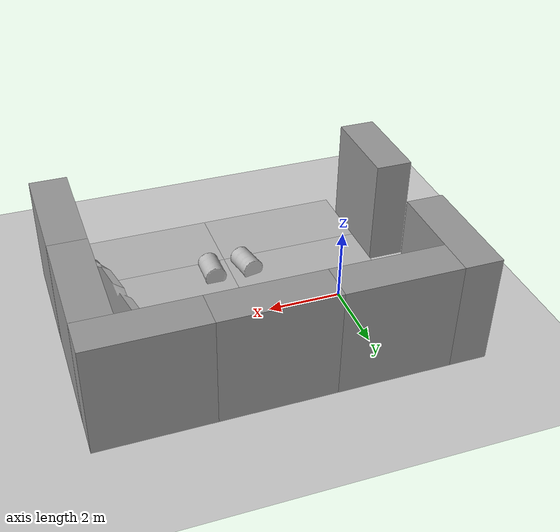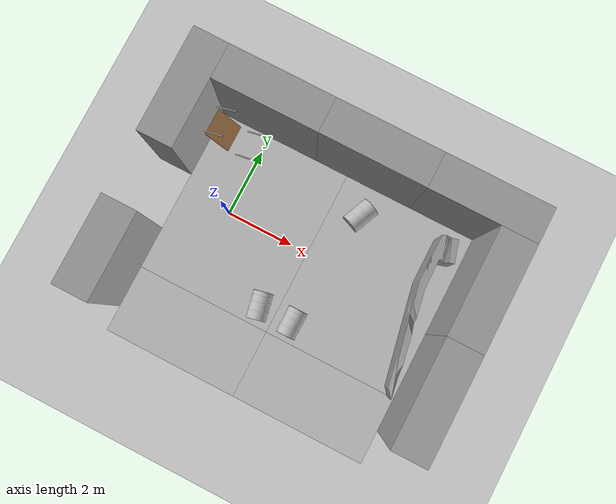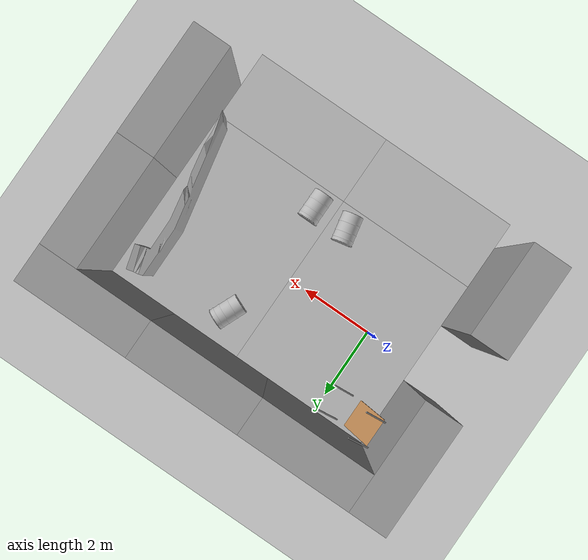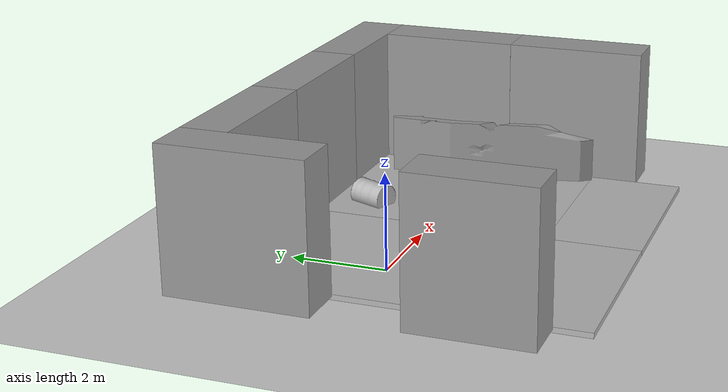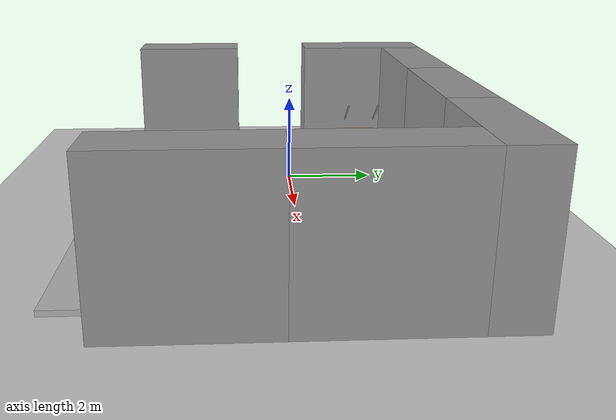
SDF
<gazebo version="1.2">
 <world name="default">
  <physics type="ode">
   <gravity>0 0 -9.8</gravity>
   <update_rate>1000</update_rate>
   <ode>
    <solver><type>quick</type><dt>0.001</dt><iters>50</iters><sor>1.4</sor></solver>
    <constraints>
     <cfm>0.0</cfm>
     <erp>0.2</erp>
     <contact_max_correcting_vel>100.0</contact_max_correcting_vel>
     <contact_surface_layer>0.0</contact_surface_layer>
    </constraints>
   </ode>
  </physics>
  <include><uri>model://sun</uri></include>
  <include><uri>model://asphalt_plane</uri><pose>0.0 0.0 -0.05 0.0 0.0 0.0</pose></include>
  <include><uri>model://mud_box2</uri><pose>2.5 -2.5 -0.05 0.0 0.0 0.0</pose></include>
  <include>
   <uri>model://table2</uri>
   <name>table_b</name>
   <static>false</static>
   <pose>-0.43 1.98 1.07 3.1416 0.9 0.0</pose>
  </include>
  <include>
   <uri>model://grey_brick_box_3x1x3</uri>
   <name>grey_brick_wall_a</name>
   <static>true</static>
   <pose>0 3.0 0 0 0 0</pose>
  </include>
  <include>
   <uri>model://grey_brick_box_3x1x3</uri>
   <name>grey_brick_wall_b</name>
   <static>true</static>
   <pose>3.0 3.0 0 0 0 0</pose>
  </include>
  <include>
   <uri>model://grey_brick_box_3x1x3</uri>
   <name>grey_brick_wall_c</name>
   <static>true</static>
   <pose>6.0 3.0 0 0 0 0</pose>
  </include>
  <include>
   <uri>model://grey_brick_box_3x1x3</uri>
   <name>grey_brick_wall_d</name>
   <static>true</static>
   <pose>-2.00 2.0 0 0 0 1.57</pose>
  </include>
  <include>
   <uri>model://grey_brick_box_2x1x3</uri>
   <scale>0.5 1 1</scale>
   <name>grey_brick_wall_e</name>
   <static>true</static>
   <pose>-2.0 -2.5 0 0 0 1.57</pose>
  </include>
  <include>
   <uri>model://grey_brick_box_3x1x3</uri>
   <name>grey_brick_wall_f</name>
   <static>true</static>
   <pose>7.0 1.0 0 0 0 1.57</pose>
  </include>
  <include>
   <uri>model://grey_brick_box_3x1x3</uri>
   <name>grey_brick_wall_g</name>
   <static>true</static>
   <pose>7.0 -2.0 0 0 0 1.57</pose>
  </include>
  <include>
   <uri>model://barrel_50</uri>
   <name>oil drum 1</name>
   <static>true</static>
   <pose>2.0 -2.0 0 0 0 0.2</pose>
  </include>
  <include>
   <uri>model://barrel_50</uri>
   <name>oil drum 2</name>
   <static>true</static>
   <pose>3.000000 -2.000000 0.000000 0.000000 0.000000 0.000000</pose>
  </include>
  <include>
   <uri>model://barrel_50</uri>
   <name>oil drum 3</name>
   <pose>3.311180 1.580800 0.000000 0.000000 0.000000 -0.400000</pose>
  </include>
  <include>
   <uri>model://grey_brickwall</uri>
   <name>broken Grey Brickwall</name>
   <static>true</static>
   <pose>5.534370 1.300000 0.000000 0.000000 0.000000 -1.3000</pose>
  </include>
  <plugin filename="libDRCPlugin.so" name="drc_plugin">
   <drchubo><model_name>drchubo</model_name><pin_link>Body_Torso</pin_link></drchubo>
   <drill>
    <drill_model>drill</drill_model>
    <coupling_link>link</coupling_link>
    <thread_pitch>-1000</thread_pitch>
    <coupling_relative_pose>0.001784 -4.6e-05 0.023 1.56985 1.55991 -0.000936</coupling_relative_pose>
   </drill>
  </plugin>
 </world>
</gazebo>

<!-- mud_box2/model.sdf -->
<sdf version="1.4">
  <model name="mud_box">
    <static>true</static>
    <link name="link">
      <collision name="collision">
        <geometry>
          <box>
            <size>8 10 0.2</size>
          </box>
        </geometry>
      </collision>
      <visual name="visual_1">
        <pose>-2 2.5 0 0 0 0</pose>
        <cast_shadows>false</cast_shadows>
        <geometry>
          <box>
            <size>4 5 0.2</size>
          </box>
        </geometry>
        <material>
          <script>
            <uri>model://mud_box/materials/scripts</uri>
            <uri>model://mud_box/materials/textures</uri>
            <name>vrc/mud</name>
          </script>
        </material>
      </visual>
      <visual name="visual_2">
        <pose>2 2.5 0 0 0 0</pose>
        <cast_shadows>false</cast_shadows>
        <geometry>
          <box>
            <size>4 5 0.2</size>
          </box>
        </geometry>
        <material>
          <script>
            <uri>model://mud_box/materials/scripts</uri>
            <uri>model://mud_box/materials/textures</uri>
            <name>vrc/mud</name>
          </script>
        </material>
      </visual>
      <visual name="visual_3">
        <pose>2 -1.0 0 0 0 0</pose>
        <cast_shadows>false</cast_shadows>
        <geometry>
          <box>
            <size>4 2.0 0.2</size>
          </box>
        </geometry>
        <material>
          <script>
            <uri>model://mud_box/materials/scripts</uri>
            <uri>model://mud_box/materials/textures</uri>
            <name>vrc/mud</name>
          </script>
        </material>
      </visual>
      <visual name="visual_4">
        <pose>-2 -1.0 0 0 0 0</pose>
        <cast_shadows>false</cast_shadows>
        <geometry>
          <box>
            <size>4 2.0 0.2</size>
          </box>
        </geometry>
        <material>
          <script>
            <uri>model://mud_box/materials/scripts</uri>
            <uri>model://mud_box/materials/textures</uri>
            <name>vrc/mud</name>
          </script>
        </material>
      </visual>

    </link>
  </model>
</sdf>

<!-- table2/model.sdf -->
<sdf version='1.6'>
  <model name='table2'>
    <link name='link'>
      <collision name='surface'>
        <pose frame=''>0 0 1 0 0 0</pose>
        <geometry>
          <box>
            <size>1.5 0.8 0.03</size>
          </box>
        </geometry>
        <surface>
          <friction>
            <ode>
              <mu>0.6</mu>
              <mu2>0.6</mu2>
            </ode>
          </friction>
        </surface>
      </collision>
      <visual name='visual1'>
        <pose frame=''>0 0 1 0 0 0</pose>
        <geometry>
          <box>
            <size>1.4 0.8 0.04</size>
          </box>
        </geometry>
        <material>
          <script>
            <uri>file://media/materials/scripts/gazebo.material</uri>
            <name>Gazebo/Wood</name>
          </script>
        </material>
      </visual>
      <collision name='front_left_leg'>
        <pose frame=''>0.68 0.38 0.5 0 0 0</pose>
        <geometry>
          <cylinder>
            <radius>0.02</radius>
            <length>1</length>
          </cylinder>
        </geometry>
      </collision>
      <visual name='front_left_leg'>
        <pose frame=''>0.68 0.38 0.5 0 0 0</pose>
        <geometry>
          <cylinder>
            <radius>0.02</radius>
            <length>1</length>
          </cylinder>
        </geometry>
        <material>
          <script>
            <uri>file://media/materials/scripts/gazebo.material</uri>
            <name>Gazebo/Grey</name>
          </script>
        </material>
      </visual>
      <collision name='front_right_leg'>
        <pose frame=''>0.68 -0.38 0.5 0 0 0</pose>
        <geometry>
          <cylinder>
            <radius>0.02</radius>
            <length>1</length>
          </cylinder>
        </geometry>
      </collision>
      <visual name='front_right_leg'>
        <pose frame=''>0.68 -0.38 0.5 0 0 0</pose>
        <geometry>
          <cylinder>
            <radius>0.02</radius>
            <length>1</length>
          </cylinder>
        </geometry>
        <material>
          <script>
            <uri>file://media/materials/scripts/gazebo.material</uri>
            <name>Gazebo/Grey</name>
          </script>
        </material>
      </visual>
      <collision name='back_right_leg'>
        <pose frame=''>-0.68 -0.38 0.5 0 0 0</pose>
        <geometry>
          <cylinder>
            <radius>0.02</radius>
            <length>1</length>
          </cylinder>
        </geometry>
      </collision>
      <visual name='back_right_leg'>
        <pose frame=''>-0.68 -0.38 0.5 0 0 0</pose>
        <geometry>
          <cylinder>
            <radius>0.02</radius>
            <length>1</length>
          </cylinder>
        </geometry>
        <material>
          <script>
            <uri>file://media/materials/scripts/gazebo.material</uri>
            <name>Gazebo/Grey</name>
          </script>
        </material>
      </visual>
      <collision name='back_left_leg'>
        <pose frame=''>-0.68 0.38 0.5 0 0 0</pose>
        <geometry>
          <cylinder>
            <radius>0.02</radius>
            <length>1</length>
          </cylinder>
        </geometry>
      </collision>
      <visual name='back_left_leg'>
        <pose frame=''>-0.68 0.38 0.5 0 0 0</pose>
        <geometry>
          <cylinder>
            <radius>0.02</radius>
            <length>1</length>
          </cylinder>
        </geometry>
        <material>
          <script>
            <uri>file://media/materials/scripts/gazebo.material</uri>
            <name>Gazebo/Grey</name>
          </script>
        </material>
      </visual>
    </link>

    <static>1</static>
    <allow_auto_disable>1</allow_auto_disable>
  </model>
</sdf>

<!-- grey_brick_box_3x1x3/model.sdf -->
<sdf version="1.4">
    <model name="grey_brick_box_3x1x3">
        <static>true</static>
        <link name="chassis">
            <pose>0 0 1.5 0 0 0</pose>
            <collision name="collision">
                <geometry>
                    <box>
                        <size>3.0 1.0 3.0</size>
                    </box>
                </geometry>
            </collision>
            <visual name="visual">
                <geometry>
                    <mesh>
                        <uri>model://grey_brick_box_3x1x3/meshes/grey_brick_box.dae</uri>
                        <scale>3.0 1.0 3.0</scale>
                    </mesh>
                </geometry>
                <material>
                  <script>
                    <uri>model://grey_brick_box_3x1x3/materials/scripts</uri>
                    <uri>model://grey_brick_box_3x1x3/materials/textures</uri>
                    <name>vrc/grey_brick_box</name>
                  </script>
                </material>
            </visual>
        </link>
    </model>
</sdf>

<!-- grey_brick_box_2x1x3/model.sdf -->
<sdf version="1.4">
    <model name="grey_brick_box_2x1x3">
        <static>true</static>
        <link name="chassis">
            <pose>0 0 1.5 0 0 0</pose>
            <collision name="collision">
                <geometry>
                    <box>
                        <size>3.0 1.0 3.0</size>
                    </box>
                </geometry>
            </collision>
            <visual name="visual">
                <geometry>
                    <mesh>
                        <uri>model://grey_brick_box_2x1x3/meshes/grey_brick_box2.dae</uri>
                        <scale>2.5 1.0 3.0</scale>
                    </mesh>
                </geometry>
                <material>
                  <script>
                    <uri>model://grey_brick_box_2x1x3/materials/scripts</uri>
                    <uri>model://grey_brick_box_2x1x3/materials/textures</uri>
                    <name>vrc/grey_brick_box2</name>
                  </script>
                </material>
            </visual>
        </link>
    </model>
</sdf>

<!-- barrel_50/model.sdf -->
<sdf version="1.4">
  <model name="barrel_50">
    <link name="link">
	<!-- Original model did not have inertia matrix I copied the matrix from the beer -->
      <inertial>
        <mass>0.390</mass>
        <inertia>
          <ixx>0.00058</ixx>
          <ixy>0</ixy>
          <ixz>0</ixz>
          <iyy>0.00058</iyy>
          <iyz>0</iyz>
          <izz>0.00019</izz>
        </inertia>
      </inertial>
      <collision name="collision">
        <geometry>
          <cylinder>
            <radius>0.098</radius>
            <length>0.035</length>
          </cylinder>
        </geometry>
      </collision>
      <visual name="visual">
        <geometry>
          <mesh>
            <uri>model://barrel_50/meshes/barrel_50.stl</uri>
            <scale> 0.01 0.01 0.01 </scale>
          </mesh>
        </geometry>
      </visual>
    </link>
  </model>
</sdf>

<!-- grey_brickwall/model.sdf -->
<sdf version="1.4">
  <model name="Grey Brick Wall">
    <link name="link">
      <inertial>
        <pose>0 0 0.4 0 0 0</pose>
        <mass>500</mass>
        <inertia>
          <ixx>51.2096</ixx>
          <iyy>51.2096</iyy>
          <izz>25</izz>
          <ixy>0</ixy>
          <ixz>0</ixz>
        </inertia>
      </inertial>
      <collision name="collision">
        <geometry>
          <mesh>
            <uri>model://grey_brickwall/meshes/grey_brickwall.dae</uri>
          </mesh>
        </geometry>
      </collision>
      <visual name="visual">
        <geometry>
          <mesh>
            <uri>model://grey_brickwall/meshes/grey_brickwall.dae</uri>
 	    <scale> 0.5 0.1 0.3 </scale>
          </mesh>
        </geometry>
        <material>
          <script>
            <uri>model://grey_brickwall/materials/scripts</uri>
            <uri>model://grey_brickwall/materials/textures</uri>
            <name>vrc/grey_wall</name>
          </script>
        </material>
      </visual>
    </link>
  </model>
</sdf>
